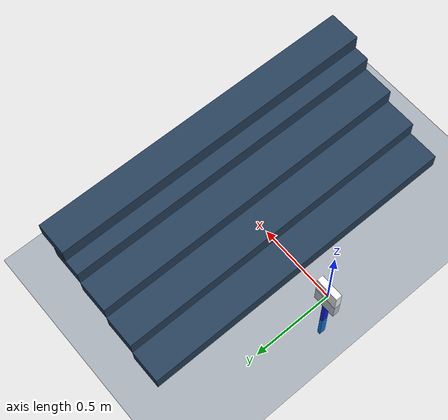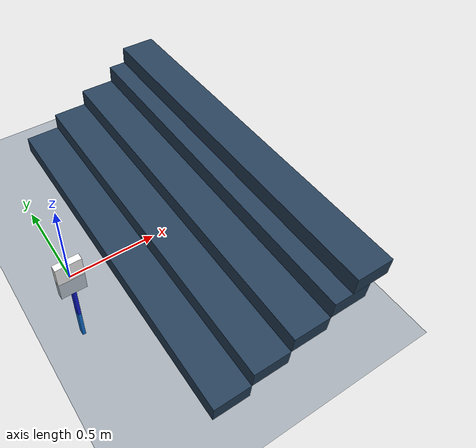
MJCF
<mujoco model="biped">
    <compiler angle="radian"/>
    <option gravity="0 0 -9.81" integrator="RK4" timestep="0.001" o_solref="-1e5 -1e3" o_friction="0.5">
        <flag override="enable"/>
    </option>

    <asset>
        <texture type="skybox" builtin="gradient" rgb1="0.3 0.5 0.7" rgb2="0 0 0" width="512" height="3072" />
        <texture type="2d" name="floor" builtin="checker" mark="edge" rgb1="0.2 0.3 0.4" rgb2="0.1 0.2 0.3" markrgb="0.8 0.8 0.8" width="300" height="300" />
        <material name="floor" texture="floor" texuniform="true" texrepeat="5 5" reflectance="0.5"/>
        <material name="gm" texture="floor" texuniform="true" texrepeat="5 5"/>
    </asset>

    <visual>
        <headlight diffuse="0.6 0.6 0.6" ambient="0.3 0.3 0.3" specular="0 0 0" />
    </visual>

    <worldbody>

        <light name="spotlight0" mode="targetbodycom" target="torso" pos="0 0 10" cutoff="60" />
        <light name="spotlight1" mode="targetbodycom" target="torso" pos="0.5 0 10" cutoff="60" />
        <geom name="floor" type="plane" material="floor" size="10 10 0.1" pos="0 0 0" conaffinity="1" condim="4"/>

        <!-- 5 stairs: rise = 0.10 m, run = 0.20 m -->
        <geom name="step1" type="box" pos="0.30 0 0.05" size="0.10 1.0 0.05" material="gm"/>
        <geom name="step2" type="box" pos="0.50 0 0.15" size="0.10 1.0 0.05" material="gm"/>
        <geom name="step3" type="box" pos="0.70 0 0.25" size="0.10 1.0 0.05" material="gm"/>
        <geom name="step4" type="box" pos="0.90 0 0.35" size="0.10 1.0 0.05" material="gm"/>
        <geom name="step5" type="box" pos="1.00 0 0.45" size="0.10 1.0 0.05" material="gm"/>

        <!-- torso -->
        <body name="torso" pos="0 0 0">
            <joint type="free"/>
            <!-- torso geometry, mass = 8 kg -->
            <geom name="torso" type="box" size="0.075 0.02 0.125" mass="8" rgba="1 1 1 1"/>

            <body name="l_thigh" pos="0 0 -0.235">
                <joint name="l_thigh" type="hinge" pos="0 0 0.11" axis="0 1 0" limited="true" range="-2.0943951 0.523599" damping="0.1"/>
                <geom name="l_thigh" type="box" size="0.01 0.02 0.11" mass="0.25" rgba="0 0 1 1"/>

                <body name="l_calf" pos="0 0 -0.22">
                    <joint name="l_calf" type="hinge" pos="0 0 0.11" axis="0 1 0" limited="true" range="0 2.7925268032" damping="0.1"/>
                    <geom name="l_calf" type="box" size="0.01 0.02 0.11" mass="0.25" rgba="0 0.5 1 1"/>
                        <geom name="l_foot" type="box" pos="0 0 -0.11" mass="0" size="0.01 0.01 0.00001" rgba="0 1 0 1"/>
                </body>
            </body>

            <body name="r_thigh" pos="0 0 -0.235">
                <joint name="r_thigh" type="hinge" pos="0 0 0.11" axis="0 1 0" limited="true" range="-2.0943951 0.523599" damping="0.1"/>
                <geom name="r_thigh" type="box" size="0.01 0.02 0.11" mass="0.25" rgba="1 0 0 1"/>

                <body name="r_calf" pos="0 0 -0.22">
                    <joint name="r_calf" type="hinge" pos="0 0 0.11" axis="0 1 0" limited="true" range="0 2.7925268032" damping="0.1"/>
                    <geom name="r_calf" type="box" size="0.01 0.02 0.11" mass="0.25" rgba="1 0.3 0 1"/>
                        <geom name="r_foot" type="box" pos="0 0 -0.11" mass="0" size="0.01 0.01 0.00001" rgba="0 1 0 1"/>
                </body>
            </body>
        </body>
    </worldbody>

    <actuator>
        <motor name="l_thigh" joint="l_thigh"/>
        <motor name="l_calf" joint="l_calf"/>
        <motor name="r_thigh" joint="r_thigh"/>
        <motor name="r_calf" joint="r_calf"/>
    </actuator>

    <contact>
        <exclude body1="l_thigh" body2="r_thigh"/>
        <exclude body1="l_calf" body2="r_calf"/>
        <exclude body1="l_calf" body2="r_thigh"/>
        <exclude body1="l_thigh" body2="r_calf"/>
    </contact>

    <keyframe>
        <!-- qpos="0 0 0.52 1 0 0 0 -1.0471975512 1.5707963268 -0.5235987756 1.5707963268" -->
        <key name="init"
            qpos="0 0 0.52 1 0 0 0 -0.0471975512 0.5707963268 -0.5235987756 0.5707963268"
            qvel="0 0 0 0 0 0 0 0 0 0"
        />
  </keyframe>
</mujoco>
